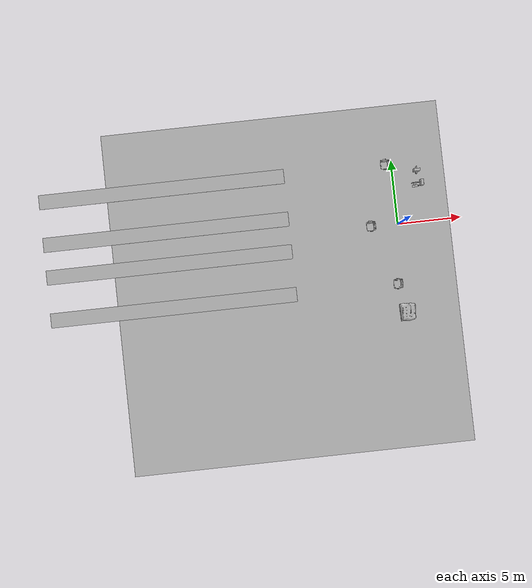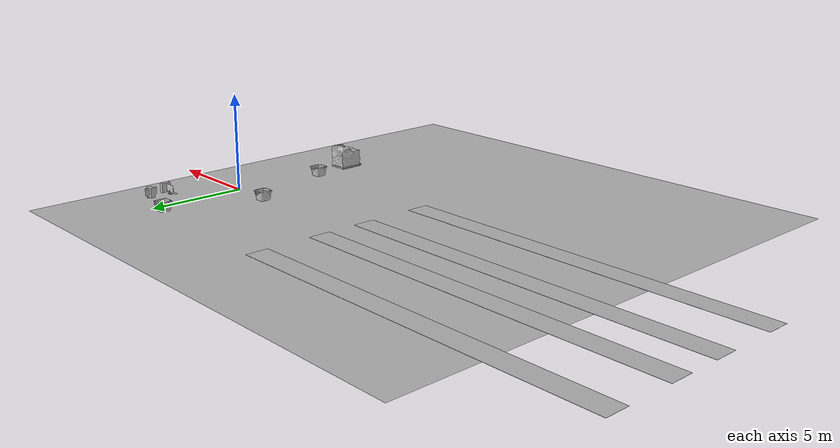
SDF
<sdf version="1.5">
 <world name="world">
  <scene><shadows>false</shadows></scene>
  <light name="user_spot_light_0" type="spot">
   <pose>-12.409511 -2.985986 4.049673 0 -0 0</pose>
   <diffuse>0.5 0.5 0.5 1</diffuse>
   <specular>0.1 0.1 0.1 1</specular>
   <direction>0 0 -1</direction>
   <attenuation>
    <range>20</range>
    <constant>0.5</constant>
    <linear>0.01</linear>
    <quadratic>0.001</quadratic>
   </attenuation>
   <cast_shadows>0</cast_shadows>
   <spot><inner_angle>0.6</inner_angle><outer_angle>1</outer_angle><falloff>1</falloff></spot>
  </light>
  <light name="user_spot_light_1" type="spot">
   <pose>-12.409511 2.985986 4.049673 0 -0 0</pose>
   <diffuse>0.5 0.5 0.5 1</diffuse>
   <specular>0.1 0.1 0.1 1</specular>
   <direction>0 0 -1</direction>
   <attenuation>
    <range>20</range>
    <constant>0.5</constant>
    <linear>0.01</linear>
    <quadratic>0.001</quadratic>
   </attenuation>
   <cast_shadows>0</cast_shadows>
   <spot><inner_angle>0.6</inner_angle><outer_angle>1</outer_angle><falloff>1</falloff></spot>
  </light>
  <light name="user_spot_light_2" type="spot">
   <pose>-7.530130 -2.985986 4.049673 0 -0 0</pose>
   <diffuse>0.5 0.5 0.5 1</diffuse>
   <specular>0.1 0.1 0.1 1</specular>
   <direction>0 0 -1</direction>
   <attenuation>
    <range>20</range>
    <constant>0.5</constant>
    <linear>0.01</linear>
    <quadratic>0.001</quadratic>
   </attenuation>
   <cast_shadows>0</cast_shadows>
   <spot><inner_angle>0.6</inner_angle><outer_angle>1</outer_angle><falloff>1</falloff></spot>
  </light>
  <light name="user_spot_light_3" type="spot">
   <pose>-7.530130 2.985986 4.049673 0 -0 0</pose>
   <diffuse>0.5 0.5 0.5 1</diffuse>
   <specular>0.1 0.1 0.1 1</specular>
   <direction>0 0 -1</direction>
   <attenuation>
    <range>20</range>
    <constant>0.5</constant>
    <linear>0.01</linear>
    <quadratic>0.001</quadratic>
   </attenuation>
   <cast_shadows>0</cast_shadows>
   <spot><inner_angle>0.6</inner_angle><outer_angle>1</outer_angle><falloff>1</falloff></spot>
  </light>
  <light type="directional" name="sun">
   <pose>0 0 10 0 0 0</pose>
   <diffuse>0.8 0.8 0.8 1</diffuse>
   <specular>0.2 0.2 0.2 1</specular>
   <attenuation>
    <range>1000</range>
    <constant>0.9</constant>
    <linear>0.01</linear>
    <quadratic>0.001</quadratic>
   </attenuation>
   <direction>-0.5 0.1 -0.9</direction>
  </light>
  <light name="camera_spot_light" type="spot">
   <pose>14 -3.0 3.0 -1.55 0.0 -1.62</pose>
   <diffuse>0.5 0.5 0.5 1</diffuse>
   <specular>0.1 0.1 0.1 1</specular>
   <direction>0 0 -1</direction>
   <attenuation>
    <range>50</range>
    <constant>0.5</constant>
    <linear>0.01</linear>
    <quadratic>0.001</quadratic>
   </attenuation>
   <cast_shadows>0</cast_shadows>
   <spot><inner_angle>0.6</inner_angle><outer_angle>1</outer_angle><falloff>1</falloff></spot>
  </light>
  <light name="camera_spot_light_1" type="point">
   <pose>-7 0 3.0 0 0.0 0</pose>
   <diffuse>127 127 127 255</diffuse>
   <specular>25 25 25 255</specular>
   <attenuation>
    <range>20</range>
    <constant>0.5</constant>
    <linear>0.01</linear>
    <quadratic>0.001</quadratic>
   </attenuation>
   <cast_shadows>0</cast_shadows>
   <spot><inner_angle>0.6</inner_angle><outer_angle>1</outer_angle><falloff>1</falloff></spot>
  </light>
  <model name="Computer1">
   <include><static>true</static><uri>model://computer_2</uri></include>
   <pose>1.885278 4.035417 0.0 0 0 1.557780</pose>
  </model>
  <model name="Computer2">
   <include><static>true</static><uri>model://computer</uri></include>
   <pose>1.691086 3.033527  0.0 0 0 0</pose>
  </model>
  <model name="BoxPallet6">
   <include><static>true</static><uri>model://box_pallets_3</uri></include>
   <pose>0.5554 -7.468 0.01589 0 0 -0.065512</pose>
  </model>
  <model name="PartCollector">
   <include><static>true</static><uri>model://trash_bin_blue</uri></include>
   <pose>-2.186829 0 -0.054593 0 0 0</pose>
  </model>
  <model name="ConveyorCollector">
   <include><static>true</static><uri>model://trash_bin_blue</uri></include>
   <pose>-0.577 -4.719131 0 0 0 0</pose>
  </model>
  <model name="ConveyorCollector2">
   <include><static>true</static><uri>model://trash_bin_blue</uri></include>
   <pose>-0.577 4.719131 0 0 0 0</pose>
  </model>
  <model name="workcell_floor_2021">
   <include><static>true</static><uri>model://workcell_floor_2021</uri></include>
   <pose>-3.6 -3.32 0 0 0 0</pose>
  </model>
  <include><name>agv_path_1</name><uri>model://agv_path</uri><pose>-8.55 4.707484 0 0 0 0</pose></include>
  <include><name>agv_path_2</name><uri>model://agv_path</uri><pose>-8.55 1.302086 0 0 0 0</pose></include>
  <include><name>agv_path_3</name><uri>model://agv_path</uri><pose>-8.55 -1.295472 0 0 0 0</pose></include>
  <include><name>agv_path_4</name><uri>model://agv_path</uri><pose>-8.55 -4.696062 0 0 0 0</pose></include>
 </world>
</sdf>

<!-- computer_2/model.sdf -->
<sdf version='1.6'>
  <model name='computer_2'>
    <static>true</static>
    <link name="link">
      <pose>0 0 0 0 0 0</pose>
      <visual name="visual">
            <geometry>
                <mesh>
                  <scale>0.01 0.01 0.01</scale>
                  <uri>model://computer_2/meshes/computer.dae</uri>
                </mesh>
            </geometry>
        </visual>

    </link>
  </model>
</sdf>

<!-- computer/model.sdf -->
<sdf version="1.5">
  <model name="computer">
    <static>true</static>
    <link name="monitor">
      <visual name="visual">
        <geometry>
          <mesh>
            <uri>model://computer/meshes/computer_monitor.obj</uri>
            <scale>0.01 0.01 0.01</scale>
          </mesh>
        </geometry>
      </visual>
    </link>
    <link name="tower">
      <pose>0.5 0 0 0 0 0</pose>
      <visual name="visual">
        <geometry>
          <mesh>
            <uri>model://computer/meshes/computer_tower.obj</uri>
            <scale>0.01 0.01 0.01</scale>
          </mesh>
        </geometry>
      </visual>
    </link>
  </model>
</sdf>

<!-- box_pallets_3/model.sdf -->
<sdf version='1.6'>
  <model name='box_pallets_3'>
    <static>true</static>
    <link name="link">
      <pose>0 0 0 0 0 0</pose>
      <visual name="visual">
            <geometry>
                <mesh>
                  <scale>0.01 0.01 0.01</scale>
                  <uri>model://box_pallets_3/meshes/box_pallet.dae</uri>
                </mesh>
            </geometry>
        </visual>

    </link>
  </model>
</sdf>

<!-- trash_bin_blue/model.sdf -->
<sdf version="1.6">
  <model name="trash_bin_blue">
    <static>false</static>
    <link name="link">
      <inertial>
        <pose>0 0 0.0 0 0 0</pose>
        <mass>0.5</mass>
        <inertia>
          <ixx>0.0009</ixx>
          <ixy>0</ixy>
          <ixz>0</ixz>
          <iyy>0.0009</iyy>
          <iyz>0</iyz>
          <izz>0.0012</izz>
        </inertia>
      </inertial>
      <collision name='collision'>
        <pose frame=''>0 0 0 0 0 0</pose>
        <geometry>
            <mesh>
            <uri>model://trash_bin_blue/meshes/trash_bin_blue.dae</uri>
            <scale>1.2 1.2 0.8</scale>
            </mesh>
          </geometry>
        <surface>
          <contact>
            <ode>
              <max_vel>0.1</max_vel>
              <min_depth>0.001</min_depth>
            </ode>
          </contact>
        </surface>
      </collision>
      <visual name="visual">
         <geometry>
           <mesh>
             <uri>model://trash_bin_blue/meshes/trash_bin_blue.dae</uri>
             <scale>1.2 1.2 0.8</scale>
           </mesh>
         </geometry>
       </visual>
    </link>
  </model>
</sdf>

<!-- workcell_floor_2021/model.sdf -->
<sdf version='1.6'>
  <model name='worlcell_floor_2021'>
    <static>true</static>
    <link name="link">
      <pose>0 1.9 0 0 0 0</pose>
      <visual name="visual">
        <geometry>
          <mesh>
            <scale>0.6 1 1</scale>
            <uri>model://workcell_floor_2021/meshes/floor.dae</uri>
          </mesh>
        </geometry>
        <plugin name="disable_shadows_plugin" filename="libdisable_shadows_plugin.so">
          <ros>
            <namespace></namespace>
          </ros>
        </plugin>
      </visual>
        <collision name="collision">
          <geometry>
            <mesh>
              <scale>0.6 1 1</scale>
              <uri>model://workcell_floor_2021/meshes/floor.dae</uri>
            </mesh>
          </geometry>
        </collision>
        <sensor name='object_disposal_contact' type='contact'>
        <update_rate>10</update_rate>
        <contact>
           <collision>collision</collision>
        </contact>
      </sensor>
    </link>

  </model>
</sdf>

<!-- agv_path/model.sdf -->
<sdf version='1.6'>
  <model name='agv_path'>
    <static>true</static>

    <link name="link">
      <visual name="visual">
        <geometry>
          <mesh>
            <uri>model://agv_path/meshes/path.dae</uri>
          </mesh>
        </geometry>
      </visual>
    </link>
  </model>
</sdf>
